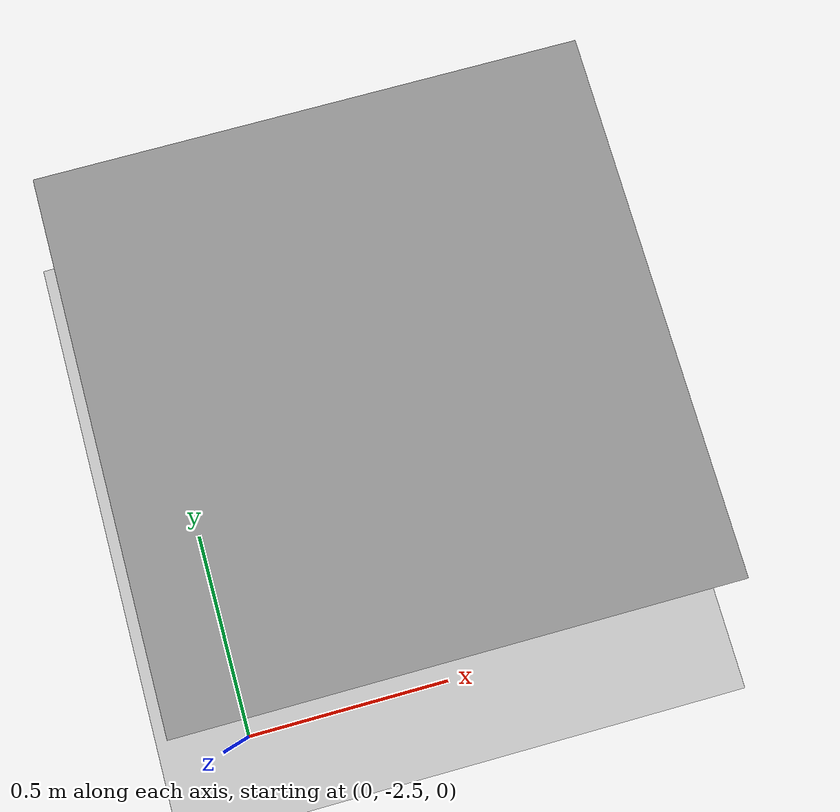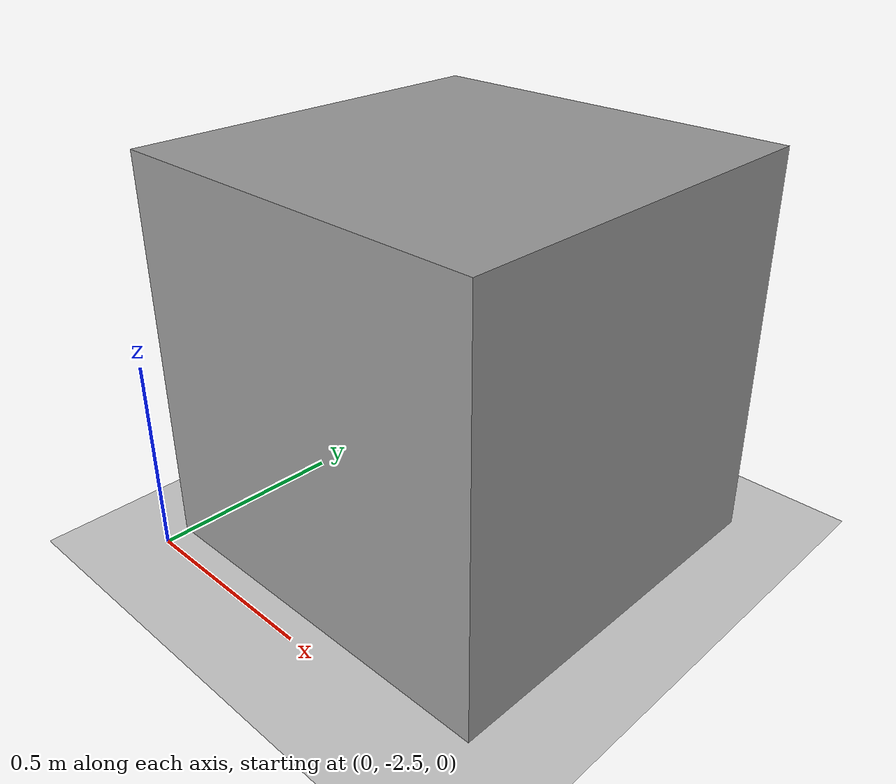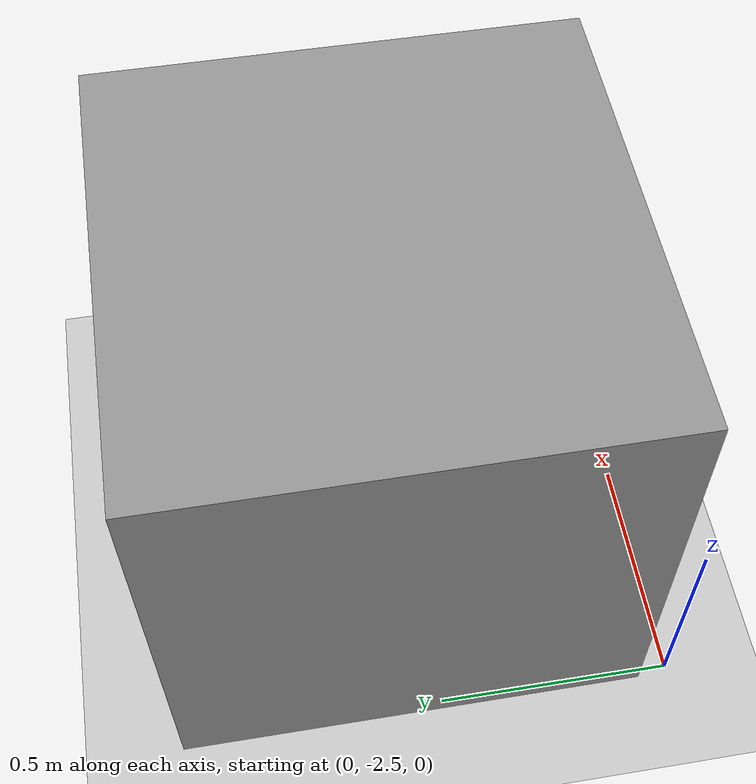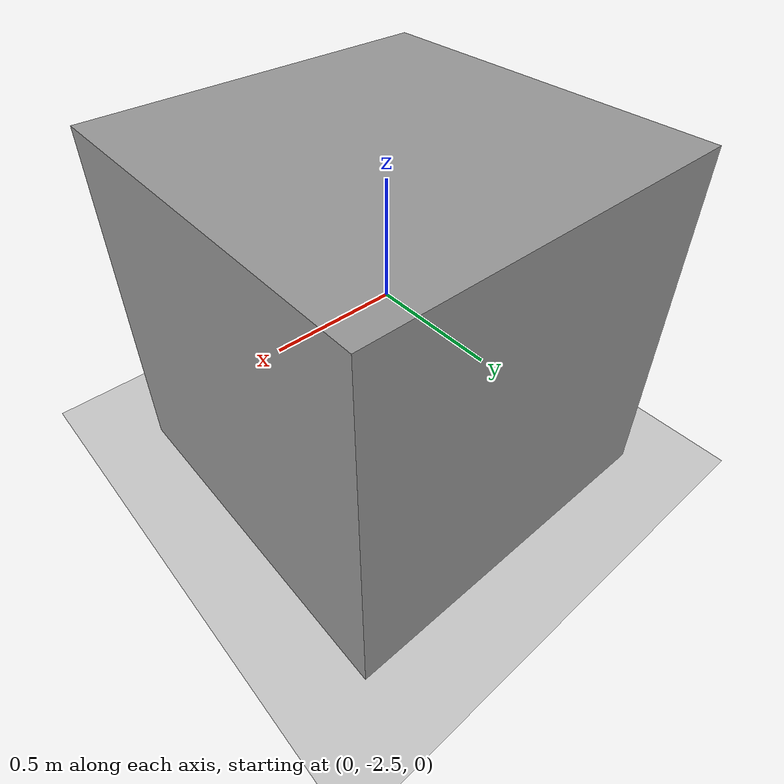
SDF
<sdf version='1.7'>
  <world name='default'>
    <light name='sun' type='directional'>
      <cast_shadows>1</cast_shadows>
      <pose>0 0 10 0 -0 0</pose>
      <diffuse>0.8 0.8 0.8 1</diffuse>
      <specular>0.2 0.2 0.2 1</specular>
      <attenuation>
        <range>1000</range>
        <constant>0.9</constant>
        <linear>0.01</linear>
        <quadratic>0.001</quadratic>
      </attenuation>
      <direction>-0.5 0.1 -0.9</direction>
      <spot>
        <inner_angle>0</inner_angle>
        <outer_angle>0</outer_angle>
        <falloff>0</falloff>
      </spot>
    </light>
    <model name='ground_plane'>
      <static>1</static>
      <link name='link'>
        <collision name='collision'>
          <geometry>
            <plane>
              <normal>0 0 1</normal>
              <size>100 100</size>
            </plane>
          </geometry>
          <surface>
            <friction>
              <ode>
                <mu>100</mu>
                <mu2>50</mu2>
              </ode>
              <torsional>
                <ode/>
              </torsional>
            </friction>
            <contact>
              <ode/>
            </contact>
            <bounce/>
          </surface>
          <max_contacts>10</max_contacts>
        </collision>
        <visual name='visual'>
          <cast_shadows>0</cast_shadows>
          <geometry>
            <plane>
              <normal>0 0 1</normal>
              <size>100 100</size>
            </plane>
          </geometry>
          <material>
            <script>
              <uri>file://media/materials/scripts/gazebo.material</uri>
              <name>Gazebo/Grey</name>
            </script>
          </material>
        </visual>
        <self_collide>0</self_collide>
        <enable_wind>0</enable_wind>
        <kinematic>0</kinematic>
      </link>
    </model>
    <gravity>0 0 -9.8</gravity>
    <magnetic_field>6e-06 2.3e-05 -4.2e-05</magnetic_field>
    <atmosphere type='adiabatic'/>
    <physics type='ode'>
      <max_step_size>0.001</max_step_size>
      <real_time_factor>1</real_time_factor>
      <real_time_update_rate>1000</real_time_update_rate>
    </physics>
    <scene>
      <ambient>0.4 0.4 0.4 1</ambient>
      <background>0.7 0.7 0.7 1</background>
      <shadows>1</shadows>
    </scene>
    <audio>
      <device>default</device>
    </audio>
    <wind/>
    <spherical_coordinates>
      <surface_model>EARTH_WGS84</surface_model>
      <latitude_deg>0</latitude_deg>
      <longitude_deg>0</longitude_deg>
      <elevation>0</elevation>
      <heading_deg>0</heading_deg>
    </spherical_coordinates>
    <model name='unit_box'>
      <pose>0.484606 -1.9357 0.5 0 -0 0</pose>
      <link name='link'>
        <inertial>
          <mass>1</mass>
          <inertia>
            <ixx>0.166667</ixx>
            <ixy>0</ixy>
            <ixz>0</ixz>
            <iyy>0.166667</iyy>
            <iyz>0</iyz>
            <izz>0.166667</izz>
          </inertia>
          <pose>0 0 0 0 -0 0</pose>
        </inertial>
        <collision name='collision'>
          <geometry>
            <box>
              <size>1 1 1</size>
            </box>
          </geometry>
          <max_contacts>10</max_contacts>
          <surface>
            <contact>
              <ode/>
            </contact>
            <bounce/>
            <friction>
              <torsional>
                <ode/>
              </torsional>
              <ode/>
            </friction>
          </surface>
        </collision>
        <visual name='visual'>
          <geometry>
            <box>
              <size>1 1 1</size>
            </box>
          </geometry>
          <material>
            <script>
              <name>Gazebo/Grey</name>
              <uri>file://media/materials/scripts/gazebo.material</uri>
            </script>
          </material>
        </visual>
        <self_collide>0</self_collide>
        <enable_wind>0</enable_wind>
        <kinematic>0</kinematic>
      </link>
    </model>
    <gui fullscreen='0'>
      <camera name='user_camera'>
        <pose>9.25764 -4.0172 1.8648 0 0.091644 2.62019</pose>
        <view_controller>orbit</view_controller>
        <projection_type>perspective</projection_type>
      </camera>
    </gui>
  </world>
</sdf>
